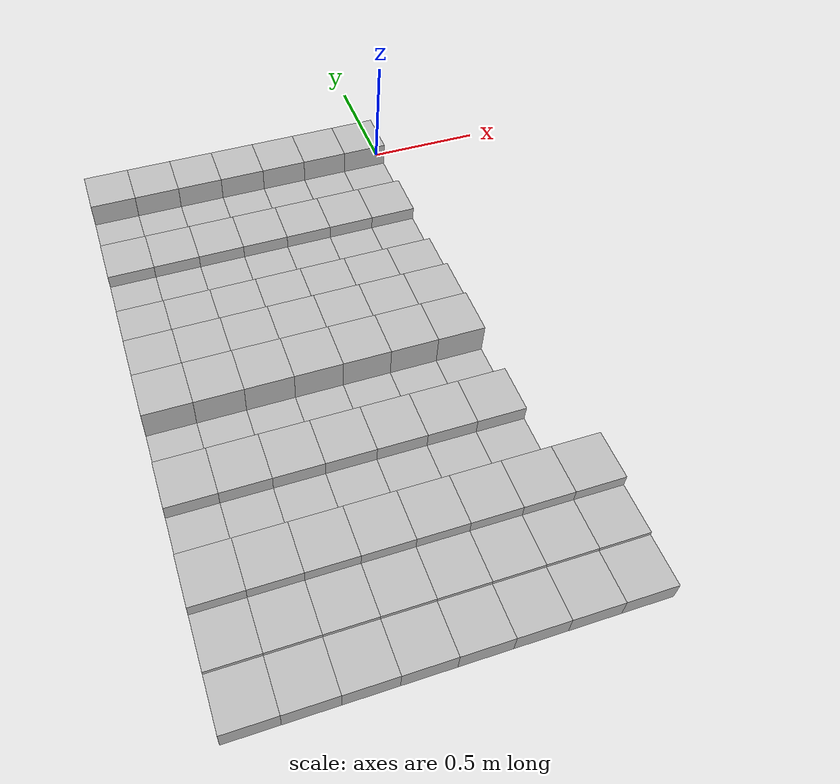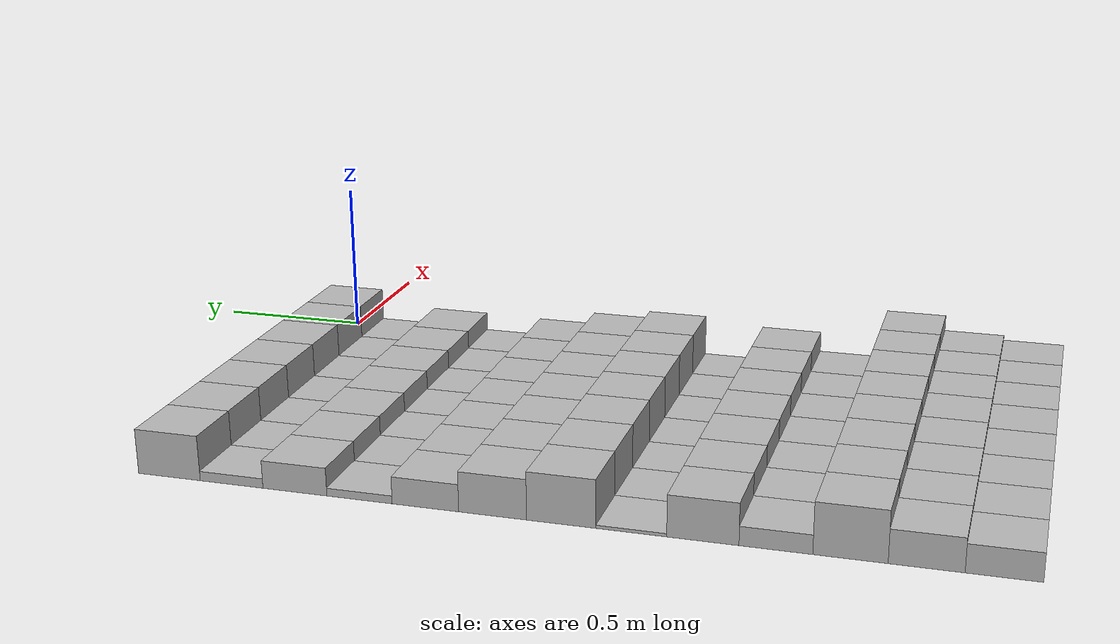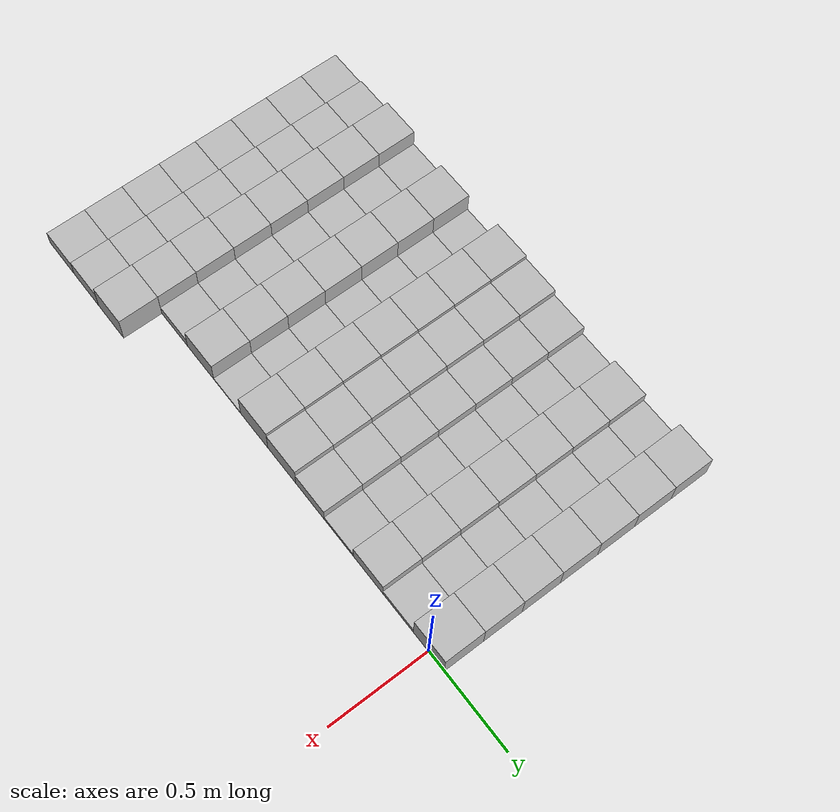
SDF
<sdf version="1.6">
 <model name="Terrain">
  <static>true</static>
  <link name="box_0_0">
   <pose>-1.3 0.0 0.0700350616192 0 0 0</pose>
   <inertial>
    <mass>1.0</mass>
    <inertia><ixx>0.0</ixx><ixy>0.0</ixy><ixz>0.0</ixz><iyy>0.0</iyy><iyz>0.0</iyz><izz>0.0</izz></inertia>
   </inertial>
   <collision name="collision"><geometry><box><size>0.2 0.2 0.140070123238</size></box></geometry></collision>
   <visual name="visual"><geometry><box><size>0.2 0.2 0.140070123238</size></box></geometry></visual>
  </link>
  <link name="box_0_1">
   <pose>-1.1 0.0 0.0700350616192 0 0 0</pose>
   <inertial>
    <mass>1.0</mass>
    <inertia><ixx>0.0</ixx><ixy>0.0</ixy><ixz>0.0</ixz><iyy>0.0</iyy><iyz>0.0</iyz><izz>0.0</izz></inertia>
   </inertial>
   <collision name="collision"><geometry><box><size>0.2 0.2 0.140070123238</size></box></geometry></collision>
   <visual name="visual"><geometry><box><size>0.2 0.2 0.140070123238</size></box></geometry></visual>
  </link>
  <link name="box_0_2">
   <pose>-0.9 0.0 0.0700350616192 0 0 0</pose>
   <inertial>
    <mass>1.0</mass>
    <inertia><ixx>0.0</ixx><ixy>0.0</ixy><ixz>0.0</ixz><iyy>0.0</iyy><iyz>0.0</iyz><izz>0.0</izz></inertia>
   </inertial>
   <collision name="collision"><geometry><box><size>0.2 0.2 0.140070123238</size></box></geometry></collision>
   <visual name="visual"><geometry><box><size>0.2 0.2 0.140070123238</size></box></geometry></visual>
  </link>
  <link name="box_0_3">
   <pose>-0.7 0.0 0.0700350616192 0 0 0</pose>
   <inertial>
    <mass>1.0</mass>
    <inertia><ixx>0.0</ixx><ixy>0.0</ixy><ixz>0.0</ixz><iyy>0.0</iyy><iyz>0.0</iyz><izz>0.0</izz></inertia>
   </inertial>
   <collision name="collision"><geometry><box><size>0.2 0.2 0.140070123238</size></box></geometry></collision>
   <visual name="visual"><geometry><box><size>0.2 0.2 0.140070123238</size></box></geometry></visual>
  </link>
  <link name="box_0_4">
   <pose>-0.5 0.0 0.0700350616192 0 0 0</pose>
   <inertial>
    <mass>1.0</mass>
    <inertia><ixx>0.0</ixx><ixy>0.0</ixy><ixz>0.0</ixz><iyy>0.0</iyy><iyz>0.0</iyz><izz>0.0</izz></inertia>
   </inertial>
   <collision name="collision"><geometry><box><size>0.2 0.2 0.140070123238</size></box></geometry></collision>
   <visual name="visual"><geometry><box><size>0.2 0.2 0.140070123238</size></box></geometry></visual>
  </link>
  <link name="box_0_5">
   <pose>-0.3 0.0 0.0700350616192 0 0 0</pose>
   <inertial>
    <mass>1.0</mass>
    <inertia><ixx>0.0</ixx><ixy>0.0</ixy><ixz>0.0</ixz><iyy>0.0</iyy><iyz>0.0</iyz><izz>0.0</izz></inertia>
   </inertial>
   <collision name="collision"><geometry><box><size>0.2 0.2 0.140070123238</size></box></geometry></collision>
   <visual name="visual"><geometry><box><size>0.2 0.2 0.140070123238</size></box></geometry></visual>
  </link>
  <link name="box_0_6">
   <pose>-0.1 0.0 0.0700350616192 0 0 0</pose>
   <inertial>
    <mass>1.0</mass>
    <inertia><ixx>0.0</ixx><ixy>0.0</ixy><ixz>0.0</ixz><iyy>0.0</iyy><iyz>0.0</iyz><izz>0.0</izz></inertia>
   </inertial>
   <collision name="collision"><geometry><box><size>0.2 0.2 0.140070123238</size></box></geometry></collision>
   <visual name="visual"><geometry><box><size>0.2 0.2 0.140070123238</size></box></geometry></visual>
  </link>
  <link name="box_1_0">
   <pose>-1.3 -0.2 0.0147610610979 0 0 0</pose>
   <inertial>
    <mass>1.0</mass>
    <inertia><ixx>0.0</ixx><ixy>0.0</ixy><ixz>0.0</ixz><iyy>0.0</iyy><iyz>0.0</iyz><izz>0.0</izz></inertia>
   </inertial>
   <collision name="collision"><geometry><box><size>0.2 0.2 0.0295221221957</size></box></geometry></collision>
   <visual name="visual"><geometry><box><size>0.2 0.2 0.0295221221957</size></box></geometry></visual>
  </link>
  <link name="box_1_1">
   <pose>-1.1 -0.2 0.0147610610979 0 0 0</pose>
   <inertial>
    <mass>1.0</mass>
    <inertia><ixx>0.0</ixx><ixy>0.0</ixy><ixz>0.0</ixz><iyy>0.0</iyy><iyz>0.0</iyz><izz>0.0</izz></inertia>
   </inertial>
   <collision name="collision"><geometry><box><size>0.2 0.2 0.0295221221957</size></box></geometry></collision>
   <visual name="visual"><geometry><box><size>0.2 0.2 0.0295221221957</size></box></geometry></visual>
  </link>
  <link name="box_1_2">
   <pose>-0.9 -0.2 0.0147610610979 0 0 0</pose>
   <inertial>
    <mass>1.0</mass>
    <inertia><ixx>0.0</ixx><ixy>0.0</ixy><ixz>0.0</ixz><iyy>0.0</iyy><iyz>0.0</iyz><izz>0.0</izz></inertia>
   </inertial>
   <collision name="collision"><geometry><box><size>0.2 0.2 0.0295221221957</size></box></geometry></collision>
   <visual name="visual"><geometry><box><size>0.2 0.2 0.0295221221957</size></box></geometry></visual>
  </link>
  <link name="box_1_3">
   <pose>-0.7 -0.2 0.0147610610979 0 0 0</pose>
   <inertial>
    <mass>1.0</mass>
    <inertia><ixx>0.0</ixx><ixy>0.0</ixy><ixz>0.0</ixz><iyy>0.0</iyy><iyz>0.0</iyz><izz>0.0</izz></inertia>
   </inertial>
   <collision name="collision"><geometry><box><size>0.2 0.2 0.0295221221957</size></box></geometry></collision>
   <visual name="visual"><geometry><box><size>0.2 0.2 0.0295221221957</size></box></geometry></visual>
  </link>
  <link name="box_1_4">
   <pose>-0.5 -0.2 0.0147610610979 0 0 0</pose>
   <inertial>
    <mass>1.0</mass>
    <inertia><ixx>0.0</ixx><ixy>0.0</ixy><ixz>0.0</ixz><iyy>0.0</iyy><iyz>0.0</iyz><izz>0.0</izz></inertia>
   </inertial>
   <collision name="collision"><geometry><box><size>0.2 0.2 0.0295221221957</size></box></geometry></collision>
   <visual name="visual"><geometry><box><size>0.2 0.2 0.0295221221957</size></box></geometry></visual>
  </link>
  <link name="box_1_5">
   <pose>-0.3 -0.2 0.0147610610979 0 0 0</pose>
   <inertial>
    <mass>1.0</mass>
    <inertia><ixx>0.0</ixx><ixy>0.0</ixy><ixz>0.0</ixz><iyy>0.0</iyy><iyz>0.0</iyz><izz>0.0</izz></inertia>
   </inertial>
   <collision name="collision"><geometry><box><size>0.2 0.2 0.0295221221957</size></box></geometry></collision>
   <visual name="visual"><geometry><box><size>0.2 0.2 0.0295221221957</size></box></geometry></visual>
  </link>
  <link name="box_1_6">
   <pose>-0.1 -0.2 0.0147610610979 0 0 0</pose>
   <inertial>
    <mass>1.0</mass>
    <inertia><ixx>0.0</ixx><ixy>0.0</ixy><ixz>0.0</ixz><iyy>0.0</iyy><iyz>0.0</iyz><izz>0.0</izz></inertia>
   </inertial>
   <collision name="collision"><geometry><box><size>0.2 0.2 0.0295221221957</size></box></geometry></collision>
   <visual name="visual"><geometry><box><size>0.2 0.2 0.0295221221957</size></box></geometry></visual>
  </link>
  <link name="box_2_0">
   <pose>-1.3 -0.4 0.0431147949159 0 0 0</pose>
   <inertial>
    <mass>1.0</mass>
    <inertia><ixx>0.0</ixx><ixy>0.0</ixy><ixz>0.0</ixz><iyy>0.0</iyy><iyz>0.0</iyz><izz>0.0</izz></inertia>
   </inertial>
   <collision name="collision"><geometry><box><size>0.2 0.2 0.0862295898317</size></box></geometry></collision>
   <visual name="visual"><geometry><box><size>0.2 0.2 0.0862295898317</size></box></geometry></visual>
  </link>
  <link name="box_2_1">
   <pose>-1.1 -0.4 0.0431147949159 0 0 0</pose>
   <inertial>
    <mass>1.0</mass>
    <inertia><ixx>0.0</ixx><ixy>0.0</ixy><ixz>0.0</ixz><iyy>0.0</iyy><iyz>0.0</iyz><izz>0.0</izz></inertia>
   </inertial>
   <collision name="collision"><geometry><box><size>0.2 0.2 0.0862295898317</size></box></geometry></collision>
   <visual name="visual"><geometry><box><size>0.2 0.2 0.0862295898317</size></box></geometry></visual>
  </link>
  <link name="box_2_2">
   <pose>-0.9 -0.4 0.0431147949159 0 0 0</pose>
   <inertial>
    <mass>1.0</mass>
    <inertia><ixx>0.0</ixx><ixy>0.0</ixy><ixz>0.0</ixz><iyy>0.0</iyy><iyz>0.0</iyz><izz>0.0</izz></inertia>
   </inertial>
   <collision name="collision"><geometry><box><size>0.2 0.2 0.0862295898317</size></box></geometry></collision>
   <visual name="visual"><geometry><box><size>0.2 0.2 0.0862295898317</size></box></geometry></visual>
  </link>
  <link name="box_2_3">
   <pose>-0.7 -0.4 0.0431147949159 0 0 0</pose>
   <inertial>
    <mass>1.0</mass>
    <inertia><ixx>0.0</ixx><ixy>0.0</ixy><ixz>0.0</ixz><iyy>0.0</iyy><iyz>0.0</iyz><izz>0.0</izz></inertia>
   </inertial>
   <collision name="collision"><geometry><box><size>0.2 0.2 0.0862295898317</size></box></geometry></collision>
   <visual name="visual"><geometry><box><size>0.2 0.2 0.0862295898317</size></box></geometry></visual>
  </link>
  <link name="box_2_4">
   <pose>-0.5 -0.4 0.0431147949159 0 0 0</pose>
   <inertial>
    <mass>1.0</mass>
    <inertia><ixx>0.0</ixx><ixy>0.0</ixy><ixz>0.0</ixz><iyy>0.0</iyy><iyz>0.0</iyz><izz>0.0</izz></inertia>
   </inertial>
   <collision name="collision"><geometry><box><size>0.2 0.2 0.0862295898317</size></box></geometry></collision>
   <visual name="visual"><geometry><box><size>0.2 0.2 0.0862295898317</size></box></geometry></visual>
  </link>
  <link name="box_2_5">
   <pose>-0.3 -0.4 0.0431147949159 0 0 0</pose>
   <inertial>
    <mass>1.0</mass>
    <inertia><ixx>0.0</ixx><ixy>0.0</ixy><ixz>0.0</ixz><iyy>0.0</iyy><iyz>0.0</iyz><izz>0.0</izz></inertia>
   </inertial>
   <collision name="collision"><geometry><box><size>0.2 0.2 0.0862295898317</size></box></geometry></collision>
   <visual name="visual"><geometry><box><size>0.2 0.2 0.0862295898317</size></box></geometry></visual>
  </link>
  <link name="box_2_6">
   <pose>-0.1 -0.4 0.0431147949159 0 0 0</pose>
   <inertial>
    <mass>1.0</mass>
    <inertia><ixx>0.0</ixx><ixy>0.0</ixy><ixz>0.0</ixz><iyy>0.0</iyy><iyz>0.0</iyz><izz>0.0</izz></inertia>
   </inertial>
   <collision name="collision"><geometry><box><size>0.2 0.2 0.0862295898317</size></box></geometry></collision>
   <visual name="visual"><geometry><box><size>0.2 0.2 0.0862295898317</size></box></geometry></visual>
  </link>
  <link name="box_3_0">
   <pose>-1.3 -0.6 0.012055614394 0 0 0</pose>
   <inertial>
    <mass>1.0</mass>
    <inertia><ixx>0.0</ixx><ixy>0.0</ixy><ixz>0.0</ixz><iyy>0.0</iyy><iyz>0.0</iyz><izz>0.0</izz></inertia>
   </inertial>
   <collision name="collision"><geometry><box><size>0.2 0.2 0.024111228788</size></box></geometry></collision>
   <visual name="visual"><geometry><box><size>0.2 0.2 0.024111228788</size></box></geometry></visual>
  </link>
  <link name="box_3_1">
   <pose>-1.1 -0.6 0.012055614394 0 0 0</pose>
   <inertial>
    <mass>1.0</mass>
    <inertia><ixx>0.0</ixx><ixy>0.0</ixy><ixz>0.0</ixz><iyy>0.0</iyy><iyz>0.0</iyz><izz>0.0</izz></inertia>
   </inertial>
   <collision name="collision"><geometry><box><size>0.2 0.2 0.024111228788</size></box></geometry></collision>
   <visual name="visual"><geometry><box><size>0.2 0.2 0.024111228788</size></box></geometry></visual>
  </link>
  <link name="box_3_2">
   <pose>-0.9 -0.6 0.012055614394 0 0 0</pose>
   <inertial>
    <mass>1.0</mass>
    <inertia><ixx>0.0</ixx><ixy>0.0</ixy><ixz>0.0</ixz><iyy>0.0</iyy><iyz>0.0</iyz><izz>0.0</izz></inertia>
   </inertial>
   <collision name="collision"><geometry><box><size>0.2 0.2 0.024111228788</size></box></geometry></collision>
   <visual name="visual"><geometry><box><size>0.2 0.2 0.024111228788</size></box></geometry></visual>
  </link>
  <link name="box_3_3">
   <pose>-0.7 -0.6 0.012055614394 0 0 0</pose>
   <inertial>
    <mass>1.0</mass>
    <inertia><ixx>0.0</ixx><ixy>0.0</ixy><ixz>0.0</ixz><iyy>0.0</iyy><iyz>0.0</iyz><izz>0.0</izz></inertia>
   </inertial>
   <collision name="collision"><geometry><box><size>0.2 0.2 0.024111228788</size></box></geometry></collision>
   <visual name="visual"><geometry><box><size>0.2 0.2 0.024111228788</size></box></geometry></visual>
  </link>
  <link name="box_3_4">
   <pose>-0.5 -0.6 0.012055614394 0 0 0</pose>
   <inertial>
    <mass>1.0</mass>
    <inertia><ixx>0.0</ixx><ixy>0.0</ixy><ixz>0.0</ixz><iyy>0.0</iyy><iyz>0.0</iyz><izz>0.0</izz></inertia>
   </inertial>
   <collision name="collision"><geometry><box><size>0.2 0.2 0.024111228788</size></box></geometry></collision>
   <visual name="visual"><geometry><box><size>0.2 0.2 0.024111228788</size></box></geometry></visual>
  </link>
  <link name="box_3_5">
   <pose>-0.3 -0.6 0.012055614394 0 0 0</pose>
   <inertial>
    <mass>1.0</mass>
    <inertia><ixx>0.0</ixx><ixy>0.0</ixy><ixz>0.0</ixz><iyy>0.0</iyy><iyz>0.0</iyz><izz>0.0</izz></inertia>
   </inertial>
   <collision name="collision"><geometry><box><size>0.2 0.2 0.024111228788</size></box></geometry></collision>
   <visual name="visual"><geometry><box><size>0.2 0.2 0.024111228788</size></box></geometry></visual>
  </link>
  <link name="box_3_6">
   <pose>-0.1 -0.6 0.012055614394 0 0 0</pose>
   <inertial>
    <mass>1.0</mass>
    <inertia><ixx>0.0</ixx><ixy>0.0</ixy><ixz>0.0</ixz><iyy>0.0</iyy><iyz>0.0</iyz><izz>0.0</izz></inertia>
   </inertial>
   <collision name="collision"><geometry><box><size>0.2 0.2 0.024111228788</size></box></geometry></collision>
   <visual name="visual"><geometry><box><size>0.2 0.2 0.024111228788</size></box></geometry></visual>
  </link>
  <link name="box_4_0">
   <pose>-1.3 -0.8 0.0417228613779 0 0 0</pose>
   <inertial>
    <mass>1.0</mass>
    <inertia><ixx>0.0</ixx><ixy>0.0</ixy><ixz>0.0</ixz><iyy>0.0</iyy><iyz>0.0</iyz><izz>0.0</izz></inertia>
   </inertial>
   <collision name="collision"><geometry><box><size>0.2 0.2 0.0834457227559</size></box></geometry></collision>
   <visual name="visual"><geometry><box><size>0.2 0.2 0.0834457227559</size></box></geometry></visual>
  </link>
  <link name="box_4_1">
   <pose>-1.1 -0.8 0.0417228613779 0 0 0</pose>
   <inertial>
    <mass>1.0</mass>
    <inertia><ixx>0.0</ixx><ixy>0.0</ixy><ixz>0.0</ixz><iyy>0.0</iyy><iyz>0.0</iyz><izz>0.0</izz></inertia>
   </inertial>
   <collision name="collision"><geometry><box><size>0.2 0.2 0.0834457227559</size></box></geometry></collision>
   <visual name="visual"><geometry><box><size>0.2 0.2 0.0834457227559</size></box></geometry></visual>
  </link>
  <link name="box_4_2">
   <pose>-0.9 -0.8 0.0417228613779 0 0 0</pose>
   <inertial>
    <mass>1.0</mass>
    <inertia><ixx>0.0</ixx><ixy>0.0</ixy><ixz>0.0</ixz><iyy>0.0</iyy><iyz>0.0</iyz><izz>0.0</izz></inertia>
   </inertial>
   <collision name="collision"><geometry><box><size>0.2 0.2 0.0834457227559</size></box></geometry></collision>
   <visual name="visual"><geometry><box><size>0.2 0.2 0.0834457227559</size></box></geometry></visual>
  </link>
  <link name="box_4_3">
   <pose>-0.7 -0.8 0.0417228613779 0 0 0</pose>
   <inertial>
    <mass>1.0</mass>
    <inertia><ixx>0.0</ixx><ixy>0.0</ixy><ixz>0.0</ixz><iyy>0.0</iyy><iyz>0.0</iyz><izz>0.0</izz></inertia>
   </inertial>
   <collision name="collision"><geometry><box><size>0.2 0.2 0.0834457227559</size></box></geometry></collision>
   <visual name="visual"><geometry><box><size>0.2 0.2 0.0834457227559</size></box></geometry></visual>
  </link>
  <link name="box_4_4">
   <pose>-0.5 -0.8 0.0417228613779 0 0 0</pose>
   <inertial>
    <mass>1.0</mass>
    <inertia><ixx>0.0</ixx><ixy>0.0</ixy><ixz>0.0</ixz><iyy>0.0</iyy><iyz>0.0</iyz><izz>0.0</izz></inertia>
   </inertial>
   <collision name="collision"><geometry><box><size>0.2 0.2 0.0834457227559</size></box></geometry></collision>
   <visual name="visual"><geometry><box><size>0.2 0.2 0.0834457227559</size></box></geometry></visual>
  </link>
  <link name="box_4_5">
   <pose>-0.3 -0.8 0.0417228613779 0 0 0</pose>
   <inertial>
    <mass>1.0</mass>
    <inertia><ixx>0.0</ixx><ixy>0.0</ixy><ixz>0.0</ixz><iyy>0.0</iyy><iyz>0.0</iyz><izz>0.0</izz></inertia>
   </inertial>
   <collision name="collision"><geometry><box><size>0.2 0.2 0.0834457227559</size></box></geometry></collision>
   <visual name="visual"><geometry><box><size>0.2 0.2 0.0834457227559</size></box></geometry></visual>
  </link>
  <link name="box_4_6">
   <pose>-0.1 -0.8 0.0417228613779 0 0 0</pose>
   <inertial>
    <mass>1.0</mass>
    <inertia><ixx>0.0</ixx><ixy>0.0</ixy><ixz>0.0</ixz><iyy>0.0</iyy><iyz>0.0</iyz><izz>0.0</izz></inertia>
   </inertial>
   <collision name="collision"><geometry><box><size>0.2 0.2 0.0834457227559</size></box></geometry></collision>
   <visual name="visual"><geometry><box><size>0.2 0.2 0.0834457227559</size></box></geometry></visual>
  </link>
  <link name="box_5_0">
   <pose>-1.3 -1.0 0.0614715375095 0 0 0</pose>
   <inertial>
    <mass>1.0</mass>
    <inertia><ixx>0.0</ixx><ixy>0.0</ixy><ixz>0.0</ixz><iyy>0.0</iyy><iyz>0.0</iyz><izz>0.0</izz></inertia>
   </inertial>
   <collision name="collision"><geometry><box><size>0.2 0.2 0.122943075019</size></box></geometry></collision>
   <visual name="visual"><geometry><box><size>0.2 0.2 0.122943075019</size></box></geometry></visual>
  </link>
  <link name="box_5_1">
   <pose>-1.1 -1.0 0.0614715375095 0 0 0</pose>
   <inertial>
    <mass>1.0</mass>
    <inertia><ixx>0.0</ixx><ixy>0.0</ixy><ixz>0.0</ixz><iyy>0.0</iyy><iyz>0.0</iyz><izz>0.0</izz></inertia>
   </inertial>
   <collision name="collision"><geometry><box><size>0.2 0.2 0.122943075019</size></box></geometry></collision>
   <visual name="visual"><geometry><box><size>0.2 0.2 0.122943075019</size></box></geometry></visual>
  </link>
  <link name="box_5_2">
   <pose>-0.9 -1.0 0.0614715375095 0 0 0</pose>
   <inertial>
    <mass>1.0</mass>
    <inertia><ixx>0.0</ixx><ixy>0.0</ixy><ixz>0.0</ixz><iyy>0.0</iyy><iyz>0.0</iyz><izz>0.0</izz></inertia>
   </inertial>
   <collision name="collision"><geometry><box><size>0.2 0.2 0.122943075019</size></box></geometry></collision>
   <visual name="visual"><geometry><box><size>0.2 0.2 0.122943075019</size></box></geometry></visual>
  </link>
  <link name="box_5_3">
   <pose>-0.7 -1.0 0.0614715375095 0 0 0</pose>
   <inertial>
    <mass>1.0</mass>
    <inertia><ixx>0.0</ixx><ixy>0.0</ixy><ixz>0.0</ixz><iyy>0.0</iyy><iyz>0.0</iyz><izz>0.0</izz></inertia>
   </inertial>
   <collision name="collision"><geometry><box><size>0.2 0.2 0.122943075019</size></box></geometry></collision>
   <visual name="visual"><geometry><box><size>0.2 0.2 0.122943075019</size></box></geometry></visual>
  </link>
  <link name="box_5_4">
   <pose>-0.5 -1.0 0.0614715375095 0 0 0</pose>
   <inertial>
    <mass>1.0</mass>
    <inertia><ixx>0.0</ixx><ixy>0.0</ixy><ixz>0.0</ixz><iyy>0.0</iyy><iyz>0.0</iyz><izz>0.0</izz></inertia>
   </inertial>
   <collision name="collision"><geometry><box><size>0.2 0.2 0.122943075019</size></box></geometry></collision>
   <visual name="visual"><geometry><box><size>0.2 0.2 0.122943075019</size></box></geometry></visual>
  </link>
  <link name="box_5_5">
   <pose>-0.3 -1.0 0.0614715375095 0 0 0</pose>
   <inertial>
    <mass>1.0</mass>
    <inertia><ixx>0.0</ixx><ixy>0.0</ixy><ixz>0.0</ixz><iyy>0.0</iyy><iyz>0.0</iyz><izz>0.0</izz></inertia>
   </inertial>
   <collision name="collision"><geometry><box><size>0.2 0.2 0.122943075019</size></box></geometry></collision>
   <visual name="visual"><geometry><box><size>0.2 0.2 0.122943075019</size></box></geometry></visual>
  </link>
  <link name="box_5_6">
   <pose>-0.1 -1.0 0.0614715375095 0 0 0</pose>
   <inertial>
    <mass>1.0</mass>
    <inertia><ixx>0.0</ixx><ixy>0.0</ixy><ixz>0.0</ixz><iyy>0.0</iyy><iyz>0.0</iyz><izz>0.0</izz></inertia>
   </inertial>
   <collision name="collision"><geometry><box><size>0.2 0.2 0.122943075019</size></box></geometry></collision>
   <visual name="visual"><geometry><box><size>0.2 0.2 0.122943075019</size></box></geometry></visual>
  </link>
  <link name="box_6_0">
   <pose>-1.3 -1.2 0.0731963180376 0 0 0</pose>
   <inertial>
    <mass>1.0</mass>
    <inertia><ixx>0.0</ixx><ixy>0.0</ixy><ixz>0.0</ixz><iyy>0.0</iyy><iyz>0.0</iyz><izz>0.0</izz></inertia>
   </inertial>
   <collision name="collision"><geometry><box><size>0.2 0.2 0.146392636075</size></box></geometry></collision>
   <visual name="visual"><geometry><box><size>0.2 0.2 0.146392636075</size></box></geometry></visual>
  </link>
  <link name="box_6_1">
   <pose>-1.1 -1.2 0.0731963180376 0 0 0</pose>
   <inertial>
    <mass>1.0</mass>
    <inertia><ixx>0.0</ixx><ixy>0.0</ixy><ixz>0.0</ixz><iyy>0.0</iyy><iyz>0.0</iyz><izz>0.0</izz></inertia>
   </inertial>
   <collision name="collision"><geometry><box><size>0.2 0.2 0.146392636075</size></box></geometry></collision>
   <visual name="visual"><geometry><box><size>0.2 0.2 0.146392636075</size></box></geometry></visual>
  </link>
  <link name="box_6_2">
   <pose>-0.9 -1.2 0.0731963180376 0 0 0</pose>
   <inertial>
    <mass>1.0</mass>
    <inertia><ixx>0.0</ixx><ixy>0.0</ixy><ixz>0.0</ixz><iyy>0.0</iyy><iyz>0.0</iyz><izz>0.0</izz></inertia>
   </inertial>
   <collision name="collision"><geometry><box><size>0.2 0.2 0.146392636075</size></box></geometry></collision>
   <visual name="visual"><geometry><box><size>0.2 0.2 0.146392636075</size></box></geometry></visual>
  </link>
  <link name="box_6_3">
   <pose>-0.7 -1.2 0.0731963180376 0 0 0</pose>
   <inertial>
    <mass>1.0</mass>
    <inertia><ixx>0.0</ixx><ixy>0.0</ixy><ixz>0.0</ixz><iyy>0.0</iyy><iyz>0.0</iyz><izz>0.0</izz></inertia>
   </inertial>
   <collision name="collision"><geometry><box><size>0.2 0.2 0.146392636075</size></box></geometry></collision>
   <visual name="visual"><geometry><box><size>0.2 0.2 0.146392636075</size></box></geometry></visual>
  </link>
  <link name="box_6_4">
   <pose>-0.5 -1.2 0.0731963180376 0 0 0</pose>
   <inertial>
    <mass>1.0</mass>
    <inertia><ixx>0.0</ixx><ixy>0.0</ixy><ixz>0.0</ixz><iyy>0.0</iyy><iyz>0.0</iyz><izz>0.0</izz></inertia>
   </inertial>
   <collision name="collision"><geometry><box><size>0.2 0.2 0.146392636075</size></box></geometry></collision>
   <visual name="visual"><geometry><box><size>0.2 0.2 0.146392636075</size></box></geometry></visual>
  </link>
  <link name="box_6_5">
   <pose>-0.3 -1.2 0.0731963180376 0 0 0</pose>
   <inertial>
    <mass>1.0</mass>
    <inertia><ixx>0.0</ixx><ixy>0.0</ixy><ixz>0.0</ixz><iyy>0.0</iyy><iyz>0.0</iyz><izz>0.0</izz></inertia>
   </inertial>
   <collision name="collision"><geometry><box><size>0.2 0.2 0.146392636075</size></box></geometry></collision>
   <visual name="visual"><geometry><box><size>0.2 0.2 0.146392636075</size></box></geometry></visual>
  </link>
  <link name="box_6_6">
   <pose>-0.1 -1.2 0.0731963180376 0 0 0</pose>
   <inertial>
    <mass>1.0</mass>
    <inertia><ixx>0.0</ixx><ixy>0.0</ixy><ixz>0.0</ixz><iyy>0.0</iyy><iyz>0.0</iyz><izz>0.0</izz></inertia>
   </inertial>
   <collision name="collision"><geometry><box><size>0.2 0.2 0.146392636075</size></box></geometry></collision>
   <visual name="visual"><geometry><box><size>0.2 0.2 0.146392636075</size></box></geometry></visual>
  </link>
  <link name="box_7_0">
   <pose>-1.3 -1.4 0.0048451124713 0 0 0</pose>
   <inertial>
    <mass>1.0</mass>
    <inertia><ixx>0.0</ixx><ixy>0.0</ixy><ixz>0.0</ixz><iyy>0.0</iyy><iyz>0.0</iyz><izz>0.0</izz></inertia>
   </inertial>
   <collision name="collision"><geometry><box><size>0.2 0.2 0.00969022494259</size></box></geometry></collision>
   <visual name="visual"><geometry><box><size>0.2 0.2 0.00969022494259</size></box></geometry></visual>
  </link>
  <link name="box_7_1">
   <pose>-1.1 -1.4 0.0048451124713 0 0 0</pose>
   <inertial>
    <mass>1.0</mass>
    <inertia><ixx>0.0</ixx><ixy>0.0</ixy><ixz>0.0</ixz><iyy>0.0</iyy><iyz>0.0</iyz><izz>0.0</izz></inertia>
   </inertial>
   <collision name="collision"><geometry><box><size>0.2 0.2 0.00969022494259</size></box></geometry></collision>
   <visual name="visual"><geometry><box><size>0.2 0.2 0.00969022494259</size></box></geometry></visual>
  </link>
  <link name="box_7_2">
   <pose>-0.9 -1.4 0.0048451124713 0 0 0</pose>
   <inertial>
    <mass>1.0</mass>
    <inertia><ixx>0.0</ixx><ixy>0.0</ixy><ixz>0.0</ixz><iyy>0.0</iyy><iyz>0.0</iyz><izz>0.0</izz></inertia>
   </inertial>
   <collision name="collision"><geometry><box><size>0.2 0.2 0.00969022494259</size></box></geometry></collision>
   <visual name="visual"><geometry><box><size>0.2 0.2 0.00969022494259</size></box></geometry></visual>
  </link>
  <link name="box_7_3">
   <pose>-0.7 -1.4 0.0048451124713 0 0 0</pose>
   <inertial>
    <mass>1.0</mass>
    <inertia><ixx>0.0</ixx><ixy>0.0</ixy><ixz>0.0</ixz><iyy>0.0</iyy><iyz>0.0</iyz><izz>0.0</izz></inertia>
   </inertial>
   <collision name="collision"><geometry><box><size>0.2 0.2 0.00969022494259</size></box></geometry></collision>
   <visual name="visual"><geometry><box><size>0.2 0.2 0.00969022494259</size></box></geometry></visual>
  </link>
  <link name="box_7_4">
   <pose>-0.5 -1.4 0.0048451124713 0 0 0</pose>
   <inertial>
    <mass>1.0</mass>
    <inertia><ixx>0.0</ixx><ixy>0.0</ixy><ixz>0.0</ixz><iyy>0.0</iyy><iyz>0.0</iyz><izz>0.0</izz></inertia>
   </inertial>
   <collision name="collision"><geometry><box><size>0.2 0.2 0.00969022494259</size></box></geometry></collision>
   <visual name="visual"><geometry><box><size>0.2 0.2 0.00969022494259</size></box></geometry></visual>
  </link>
  <link name="box_7_5">
   <pose>-0.3 -1.4 0.0048451124713 0 0 0</pose>
   <inertial>
    <mass>1.0</mass>
    <inertia><ixx>0.0</ixx><ixy>0.0</ixy><ixz>0.0</ixz><iyy>0.0</iyy><iyz>0.0</iyz><izz>0.0</izz></inertia>
   </inertial>
   <collision name="collision"><geometry><box><size>0.2 0.2 0.00969022494259</size></box></geometry></collision>
   <visual name="visual"><geometry><box><size>0.2 0.2 0.00969022494259</size></box></geometry></visual>
  </link>
  <link name="box_7_6">
   <pose>-0.1 -1.4 0.0048451124713 0 0 0</pose>
   <inertial>
    <mass>1.0</mass>
    <inertia><ixx>0.0</ixx><ixy>0.0</ixy><ixz>0.0</ixz><iyy>0.0</iyy><iyz>0.0</iyz><izz>0.0</izz></inertia>
   </inertial>
   <collision name="collision"><geometry><box><size>0.2 0.2 0.00969022494259</size></box></geometry></collision>
   <visual name="visual"><geometry><box><size>0.2 0.2 0.00969022494259</size></box></geometry></visual>
  </link>
  <link name="box_8_0">
   <pose>-1.3 -1.6 0.0628663034873 0 0 0</pose>
   <inertial>
    <mass>1.0</mass>
    <inertia><ixx>0.0</ixx><ixy>0.0</ixy><ixz>0.0</ixz><iyy>0.0</iyy><iyz>0.0</iyz><izz>0.0</izz></inertia>
   </inertial>
   <collision name="collision"><geometry><box><size>0.2 0.2 0.125732606975</size></box></geometry></collision>
   <visual name="visual"><geometry><box><size>0.2 0.2 0.125732606975</size></box></geometry></visual>
  </link>
  <link name="box_8_1">
   <pose>-1.1 -1.6 0.0628663034873 0 0 0</pose>
   <inertial>
    <mass>1.0</mass>
    <inertia><ixx>0.0</ixx><ixy>0.0</ixy><ixz>0.0</ixz><iyy>0.0</iyy><iyz>0.0</iyz><izz>0.0</izz></inertia>
   </inertial>
   <collision name="collision"><geometry><box><size>0.2 0.2 0.125732606975</size></box></geometry></collision>
   <visual name="visual"><geometry><box><size>0.2 0.2 0.125732606975</size></box></geometry></visual>
  </link>
  <link name="box_8_2">
   <pose>-0.9 -1.6 0.0628663034873 0 0 0</pose>
   <inertial>
    <mass>1.0</mass>
    <inertia><ixx>0.0</ixx><ixy>0.0</ixy><ixz>0.0</ixz><iyy>0.0</iyy><iyz>0.0</iyz><izz>0.0</izz></inertia>
   </inertial>
   <collision name="collision"><geometry><box><size>0.2 0.2 0.125732606975</size></box></geometry></collision>
   <visual name="visual"><geometry><box><size>0.2 0.2 0.125732606975</size></box></geometry></visual>
  </link>
  <link name="box_8_3">
   <pose>-0.7 -1.6 0.0628663034873 0 0 0</pose>
   <inertial>
    <mass>1.0</mass>
    <inertia><ixx>0.0</ixx><ixy>0.0</ixy><ixz>0.0</ixz><iyy>0.0</iyy><iyz>0.0</iyz><izz>0.0</izz></inertia>
   </inertial>
   <collision name="collision"><geometry><box><size>0.2 0.2 0.125732606975</size></box></geometry></collision>
   <visual name="visual"><geometry><box><size>0.2 0.2 0.125732606975</size></box></geometry></visual>
  </link>
  <link name="box_8_4">
   <pose>-0.5 -1.6 0.0628663034873 0 0 0</pose>
   <inertial>
    <mass>1.0</mass>
    <inertia><ixx>0.0</ixx><ixy>0.0</ixy><ixz>0.0</ixz><iyy>0.0</iyy><iyz>0.0</iyz><izz>0.0</izz></inertia>
   </inertial>
   <collision name="collision"><geometry><box><size>0.2 0.2 0.125732606975</size></box></geometry></collision>
   <visual name="visual"><geometry><box><size>0.2 0.2 0.125732606975</size></box></geometry></visual>
  </link>
  <link name="box_8_5">
   <pose>-0.3 -1.6 0.0628663034873 0 0 0</pose>
   <inertial>
    <mass>1.0</mass>
    <inertia><ixx>0.0</ixx><ixy>0.0</ixy><ixz>0.0</ixz><iyy>0.0</iyy><iyz>0.0</iyz><izz>0.0</izz></inertia>
   </inertial>
   <collision name="collision"><geometry><box><size>0.2 0.2 0.125732606975</size></box></geometry></collision>
   <visual name="visual"><geometry><box><size>0.2 0.2 0.125732606975</size></box></geometry></visual>
  </link>
  <link name="box_8_6">
   <pose>-0.1 -1.6 0.0628663034873 0 0 0</pose>
   <inertial>
    <mass>1.0</mass>
    <inertia><ixx>0.0</ixx><ixy>0.0</ixy><ixz>0.0</ixz><iyy>0.0</iyy><iyz>0.0</iyz><izz>0.0</izz></inertia>
   </inertial>
   <collision name="collision"><geometry><box><size>0.2 0.2 0.125732606975</size></box></geometry></collision>
   <visual name="visual"><geometry><box><size>0.2 0.2 0.125732606975</size></box></geometry></visual>
  </link>
  <link name="box_9_0">
   <pose>-1.3 -1.8 0.0287414447387 0 0 0</pose>
   <inertial>
    <mass>1.0</mass>
    <inertia><ixx>0.0</ixx><ixy>0.0</ixy><ixz>0.0</ixz><iyy>0.0</iyy><iyz>0.0</iyz><izz>0.0</izz></inertia>
   </inertial>
   <collision name="collision"><geometry><box><size>0.2 0.2 0.0574828894773</size></box></geometry></collision>
   <visual name="visual"><geometry><box><size>0.2 0.2 0.0574828894773</size></box></geometry></visual>
  </link>
  <link name="box_9_1">
   <pose>-1.1 -1.8 0.0287414447387 0 0 0</pose>
   <inertial>
    <mass>1.0</mass>
    <inertia><ixx>0.0</ixx><ixy>0.0</ixy><ixz>0.0</ixz><iyy>0.0</iyy><iyz>0.0</iyz><izz>0.0</izz></inertia>
   </inertial>
   <collision name="collision"><geometry><box><size>0.2 0.2 0.0574828894773</size></box></geometry></collision>
   <visual name="visual"><geometry><box><size>0.2 0.2 0.0574828894773</size></box></geometry></visual>
  </link>
  <link name="box_9_2">
   <pose>-0.9 -1.8 0.0287414447387 0 0 0</pose>
   <inertial>
    <mass>1.0</mass>
    <inertia><ixx>0.0</ixx><ixy>0.0</ixy><ixz>0.0</ixz><iyy>0.0</iyy><iyz>0.0</iyz><izz>0.0</izz></inertia>
   </inertial>
   <collision name="collision"><geometry><box><size>0.2 0.2 0.0574828894773</size></box></geometry></collision>
   <visual name="visual"><geometry><box><size>0.2 0.2 0.0574828894773</size></box></geometry></visual>
  </link>
  <link name="box_9_3">
   <pose>-0.7 -1.8 0.0287414447387 0 0 0</pose>
   <inertial>
    <mass>1.0</mass>
    <inertia><ixx>0.0</ixx><ixy>0.0</ixy><ixz>0.0</ixz><iyy>0.0</iyy><iyz>0.0</iyz><izz>0.0</izz></inertia>
   </inertial>
   <collision name="collision"><geometry><box><size>0.2 0.2 0.0574828894773</size></box></geometry></collision>
   <visual name="visual"><geometry><box><size>0.2 0.2 0.0574828894773</size></box></geometry></visual>
  </link>
  <link name="box_9_4">
   <pose>-0.5 -1.8 0.0287414447387 0 0 0</pose>
   <inertial>
    <mass>1.0</mass>
    <inertia><ixx>0.0</ixx><ixy>0.0</ixy><ixz>0.0</ixz><iyy>0.0</iyy><iyz>0.0</iyz><izz>0.0</izz></inertia>
   </inertial>
   <collision name="collision"><geometry><box><size>0.2 0.2 0.0574828894773</size></box></geometry></collision>
   <visual name="visual"><geometry><box><size>0.2 0.2 0.0574828894773</size></box></geometry></visual>
  </link>
  <link name="box_9_5">
   <pose>-0.3 -1.8 0.0287414447387 0 0 0</pose>
   <inertial>
    <mass>1.0</mass>
    <inertia><ixx>0.0</ixx><ixy>0.0</ixy><ixz>0.0</ixz><iyy>0.0</iyy><iyz>0.0</iyz><izz>0.0</izz></inertia>
   </inertial>
   <collision name="collision"><geometry><box><size>0.2 0.2 0.0574828894773</size></box></geometry></collision>
   <visual name="visual"><geometry><box><size>0.2 0.2 0.0574828894773</size></box></geometry></visual>
  </link>
  <link name="box_9_6">
   <pose>-0.1 -1.8 0.0287414447387 0 0 0</pose>
   <inertial>
    <mass>1.0</mass>
    <inertia><ixx>0.0</ixx><ixy>0.0</ixy><ixz>0.0</ixz><iyy>0.0</iyy><iyz>0.0</iyz><izz>0.0</izz></inertia>
   </inertial>
   <collision name="collision"><geometry><box><size>0.2 0.2 0.0574828894773</size></box></geometry></collision>
   <visual name="visual"><geometry><box><size>0.2 0.2 0.0574828894773</size></box></geometry></visual>
  </link>
  <link name="box_10_0">
   <pose>-1.3 -2.0 0.0772554402192 0 0 0</pose>
   <inertial>
    <mass>1.0</mass>
    <inertia><ixx>0.0</ixx><ixy>0.0</ixy><ixz>0.0</ixz><iyy>0.0</iyy><iyz>0.0</iyz><izz>0.0</izz></inertia>
   </inertial>
   <collision name="collision"><geometry><box><size>0.2 0.2 0.154510880438</size></box></geometry></collision>
   <visual name="visual"><geometry><box><size>0.2 0.2 0.154510880438</size></box></geometry></visual>
  </link>
  <link name="box_10_1">
   <pose>-1.1 -2.0 0.0772554402192 0 0 0</pose>
   <inertial>
    <mass>1.0</mass>
    <inertia><ixx>0.0</ixx><ixy>0.0</ixy><ixz>0.0</ixz><iyy>0.0</iyy><iyz>0.0</iyz><izz>0.0</izz></inertia>
   </inertial>
   <collision name="collision"><geometry><box><size>0.2 0.2 0.154510880438</size></box></geometry></collision>
   <visual name="visual"><geometry><box><size>0.2 0.2 0.154510880438</size></box></geometry></visual>
  </link>
  <link name="box_10_2">
   <pose>-0.9 -2.0 0.0772554402192 0 0 0</pose>
   <inertial>
    <mass>1.0</mass>
    <inertia><ixx>0.0</ixx><ixy>0.0</ixy><ixz>0.0</ixz><iyy>0.0</iyy><iyz>0.0</iyz><izz>0.0</izz></inertia>
   </inertial>
   <collision name="collision"><geometry><box><size>0.2 0.2 0.154510880438</size></box></geometry></collision>
   <visual name="visual"><geometry><box><size>0.2 0.2 0.154510880438</size></box></geometry></visual>
  </link>
  <link name="box_10_3">
   <pose>-0.7 -2.0 0.0772554402192 0 0 0</pose>
   <inertial>
    <mass>1.0</mass>
    <inertia><ixx>0.0</ixx><ixy>0.0</ixy><ixz>0.0</ixz><iyy>0.0</iyy><iyz>0.0</iyz><izz>0.0</izz></inertia>
   </inertial>
   <collision name="collision"><geometry><box><size>0.2 0.2 0.154510880438</size></box></geometry></collision>
   <visual name="visual"><geometry><box><size>0.2 0.2 0.154510880438</size></box></geometry></visual>
  </link>
  <link name="box_10_4">
   <pose>-0.5 -2.0 0.0772554402192 0 0 0</pose>
   <inertial>
    <mass>1.0</mass>
    <inertia><ixx>0.0</ixx><ixy>0.0</ixy><ixz>0.0</ixz><iyy>0.0</iyy><iyz>0.0</iyz><izz>0.0</izz></inertia>
   </inertial>
   <collision name="collision"><geometry><box><size>0.2 0.2 0.154510880438</size></box></geometry></collision>
   <visual name="visual"><geometry><box><size>0.2 0.2 0.154510880438</size></box></geometry></visual>
  </link>
  <link name="box_10_5">
   <pose>-0.3 -2.0 0.0772554402192 0 0 0</pose>
   <inertial>
    <mass>1.0</mass>
    <inertia><ixx>0.0</ixx><ixy>0.0</ixy><ixz>0.0</ixz><iyy>0.0</iyy><iyz>0.0</iyz><izz>0.0</izz></inertia>
   </inertial>
   <collision name="collision"><geometry><box><size>0.2 0.2 0.154510880438</size></box></geometry></collision>
   <visual name="visual"><geometry><box><size>0.2 0.2 0.154510880438</size></box></geometry></visual>
  </link>
  <link name="box_10_6">
   <pose>-0.1 -2.0 0.0772554402192 0 0 0</pose>
   <inertial>
    <mass>1.0</mass>
    <inertia><ixx>0.0</ixx><ixy>0.0</ixy><ixz>0.0</ixz><iyy>0.0</iyy><iyz>0.0</iyz><izz>0.0</izz></inertia>
   </inertial>
   <collision name="collision"><geometry><box><size>0.2 0.2 0.154510880438</size></box></geometry></collision>
   <visual name="visual"><geometry><box><size>0.2 0.2 0.154510880438</size></box></geometry></visual>
  </link>
  <link name="box_10_7">
   <pose>0.1 -2.0 0.0772554402192 0 0 0</pose>
   <inertial>
    <mass>1.0</mass>
    <inertia><ixx>0.0</ixx><ixy>0.0</ixy><ixz>0.0</ixz><iyy>0.0</iyy><iyz>0.0</iyz><izz>0.0</izz></inertia>
   </inertial>
   <collision name="collision"><geometry><box><size>0.2 0.2 0.154510880438</size></box></geometry></collision>
   <visual name="visual"><geometry><box><size>0.2 0.2 0.154510880438</size></box></geometry></visual>
  </link>
  <link name="box_11_0">
   <pose>-1.3 -2.2 0.0504164122524 0 0 0</pose>
   <inertial>
    <mass>1.0</mass>
    <inertia><ixx>0.0</ixx><ixy>0.0</ixy><ixz>0.0</ixz><iyy>0.0</iyy><iyz>0.0</iyz><izz>0.0</izz></inertia>
   </inertial>
   <collision name="collision"><geometry><box><size>0.2 0.2 0.100832824505</size></box></geometry></collision>
   <visual name="visual"><geometry><box><size>0.2 0.2 0.100832824505</size></box></geometry></visual>
  </link>
  <link name="box_11_1">
   <pose>-1.1 -2.2 0.0504164122524 0 0 0</pose>
   <inertial>
    <mass>1.0</mass>
    <inertia><ixx>0.0</ixx><ixy>0.0</ixy><ixz>0.0</ixz><iyy>0.0</iyy><iyz>0.0</iyz><izz>0.0</izz></inertia>
   </inertial>
   <collision name="collision"><geometry><box><size>0.2 0.2 0.100832824505</size></box></geometry></collision>
   <visual name="visual"><geometry><box><size>0.2 0.2 0.100832824505</size></box></geometry></visual>
  </link>
  <link name="box_11_2">
   <pose>-0.9 -2.2 0.0504164122524 0 0 0</pose>
   <inertial>
    <mass>1.0</mass>
    <inertia><ixx>0.0</ixx><ixy>0.0</ixy><ixz>0.0</ixz><iyy>0.0</iyy><iyz>0.0</iyz><izz>0.0</izz></inertia>
   </inertial>
   <collision name="collision"><geometry><box><size>0.2 0.2 0.100832824505</size></box></geometry></collision>
   <visual name="visual"><geometry><box><size>0.2 0.2 0.100832824505</size></box></geometry></visual>
  </link>
  <link name="box_11_3">
   <pose>-0.7 -2.2 0.0504164122524 0 0 0</pose>
   <inertial>
    <mass>1.0</mass>
    <inertia><ixx>0.0</ixx><ixy>0.0</ixy><ixz>0.0</ixz><iyy>0.0</iyy><iyz>0.0</iyz><izz>0.0</izz></inertia>
   </inertial>
   <collision name="collision"><geometry><box><size>0.2 0.2 0.100832824505</size></box></geometry></collision>
   <visual name="visual"><geometry><box><size>0.2 0.2 0.100832824505</size></box></geometry></visual>
  </link>
  <link name="box_11_4">
   <pose>-0.5 -2.2 0.0504164122524 0 0 0</pose>
   <inertial>
    <mass>1.0</mass>
    <inertia><ixx>0.0</ixx><ixy>0.0</ixy><ixz>0.0</ixz><iyy>0.0</iyy><iyz>0.0</iyz><izz>0.0</izz></inertia>
   </inertial>
   <collision name="collision"><geometry><box><size>0.2 0.2 0.100832824505</size></box></geometry></collision>
   <visual name="visual"><geometry><box><size>0.2 0.2 0.100832824505</size></box></geometry></visual>
  </link>
  <link name="box_11_5">
   <pose>-0.3 -2.2 0.0504164122524 0 0 0</pose>
   <inertial>
    <mass>1.0</mass>
    <inertia><ixx>0.0</ixx><ixy>0.0</ixy><ixz>0.0</ixz><iyy>0.0</iyy><iyz>0.0</iyz><izz>0.0</izz></inertia>
   </inertial>
   <collision name="collision"><geometry><box><size>0.2 0.2 0.100832824505</size></box></geometry></collision>
   <visual name="visual"><geometry><box><size>0.2 0.2 0.100832824505</size></box></geometry></visual>
  </link>
  <link name="box_11_6">
   <pose>-0.1 -2.2 0.0504164122524 0 0 0</pose>
   <inertial>
    <mass>1.0</mass>
    <inertia><ixx>0.0</ixx><ixy>0.0</ixy><ixz>0.0</ixz><iyy>0.0</iyy><iyz>0.0</iyz><izz>0.0</izz></inertia>
   </inertial>
   <collision name="collision"><geometry><box><size>0.2 0.2 0.100832824505</size></box></geometry></collision>
   <visual name="visual"><geometry><box><size>0.2 0.2 0.100832824505</size></box></geometry></visual>
  </link>
  <link name="box_11_7">
   <pose>0.1 -2.2 0.0504164122524 0 0 0</pose>
   <inertial>
    <mass>1.0</mass>
    <inertia><ixx>0.0</ixx><ixy>0.0</ixy><ixz>0.0</ixz><iyy>0.0</iyy><iyz>0.0</iyz><izz>0.0</izz></inertia>
   </inertial>
   <collision name="collision"><geometry><box><size>0.2 0.2 0.100832824505</size></box></geometry></collision>
   <visual name="visual"><geometry><box><size>0.2 0.2 0.100832824505</size></box></geometry></visual>
  </link>
  <link name="box_12_0">
   <pose>-1.3 -2.4 0.042257528655 0 0 0</pose>
   <inertial>
    <mass>1.0</mass>
    <inertia><ixx>0.0</ixx><ixy>0.0</ixy><ixz>0.0</ixz><iyy>0.0</iyy><iyz>0.0</iyz><izz>0.0</izz></inertia>
   </inertial>
   <collision name="collision"><geometry><box><size>0.2 0.2 0.08451505731</size></box></geometry></collision>
   <visual name="visual"><geometry><box><size>0.2 0.2 0.08451505731</size></box></geometry></visual>
  </link>
  <link name="box_12_1">
   <pose>-1.1 -2.4 0.042257528655 0 0 0</pose>
   <inertial>
    <mass>1.0</mass>
    <inertia><ixx>0.0</ixx><ixy>0.0</ixy><ixz>0.0</ixz><iyy>0.0</iyy><iyz>0.0</iyz><izz>0.0</izz></inertia>
   </inertial>
   <collision name="collision"><geometry><box><size>0.2 0.2 0.08451505731</size></box></geometry></collision>
   <visual name="visual"><geometry><box><size>0.2 0.2 0.08451505731</size></box></geometry></visual>
  </link>
  <link name="box_12_2">
   <pose>-0.9 -2.4 0.042257528655 0 0 0</pose>
   <inertial>
    <mass>1.0</mass>
    <inertia><ixx>0.0</ixx><ixy>0.0</ixy><ixz>0.0</ixz><iyy>0.0</iyy><iyz>0.0</iyz><izz>0.0</izz></inertia>
   </inertial>
   <collision name="collision"><geometry><box><size>0.2 0.2 0.08451505731</size></box></geometry></collision>
   <visual name="visual"><geometry><box><size>0.2 0.2 0.08451505731</size></box></geometry></visual>
  </link>
  <link name="box_12_3">
   <pose>-0.7 -2.4 0.042257528655 0 0 0</pose>
   <inertial>
    <mass>1.0</mass>
    <inertia><ixx>0.0</ixx><ixy>0.0</ixy><ixz>0.0</ixz><iyy>0.0</iyy><iyz>0.0</iyz><izz>0.0</izz></inertia>
   </inertial>
   <collision name="collision"><geometry><box><size>0.2 0.2 0.08451505731</size></box></geometry></collision>
   <visual name="visual"><geometry><box><size>0.2 0.2 0.08451505731</size></box></geometry></visual>
  </link>
  <link name="box_12_4">
   <pose>-0.5 -2.4 0.042257528655 0 0 0</pose>
   <inertial>
    <mass>1.0</mass>
    <inertia><ixx>0.0</ixx><ixy>0.0</ixy><ixz>0.0</ixz><iyy>0.0</iyy><iyz>0.0</iyz><izz>0.0</izz></inertia>
   </inertial>
   <collision name="collision"><geometry><box><size>0.2 0.2 0.08451505731</size></box></geometry></collision>
   <visual name="visual"><geometry><box><size>0.2 0.2 0.08451505731</size></box></geometry></visual>
  </link>
  <link name="box_12_5">
   <pose>-0.3 -2.4 0.042257528655 0 0 0</pose>
   <inertial>
    <mass>1.0</mass>
    <inertia><ixx>0.0</ixx><ixy>0.0</ixy><ixz>0.0</ixz><iyy>0.0</iyy><iyz>0.0</iyz><izz>0.0</izz></inertia>
   </inertial>
   <collision name="collision"><geometry><box><size>0.2 0.2 0.08451505731</size></box></geometry></collision>
   <visual name="visual"><geometry><box><size>0.2 0.2 0.08451505731</size></box></geometry></visual>
  </link>
  <link name="box_12_6">
   <pose>-0.1 -2.4 0.042257528655 0 0 0</pose>
   <inertial>
    <mass>1.0</mass>
    <inertia><ixx>0.0</ixx><ixy>0.0</ixy><ixz>0.0</ixz><iyy>0.0</iyy><iyz>0.0</iyz><izz>0.0</izz></inertia>
   </inertial>
   <collision name="collision"><geometry><box><size>0.2 0.2 0.08451505731</size></box></geometry></collision>
   <visual name="visual"><geometry><box><size>0.2 0.2 0.08451505731</size></box></geometry></visual>
  </link>
  <link name="box_12_7">
   <pose>0.1 -2.4 0.042257528655 0 0 0</pose>
   <inertial>
    <mass>1.0</mass>
    <inertia><ixx>0.0</ixx><ixy>0.0</ixy><ixz>0.0</ixz><iyy>0.0</iyy><iyz>0.0</iyz><izz>0.0</izz></inertia>
   </inertial>
   <collision name="collision"><geometry><box><size>0.2 0.2 0.08451505731</size></box></geometry></collision>
   <visual name="visual"><geometry><box><size>0.2 0.2 0.08451505731</size></box></geometry></visual>
  </link>
 </model>
</sdf>
